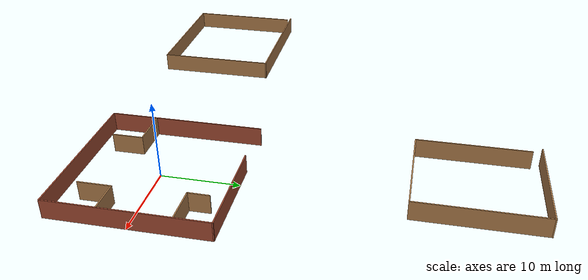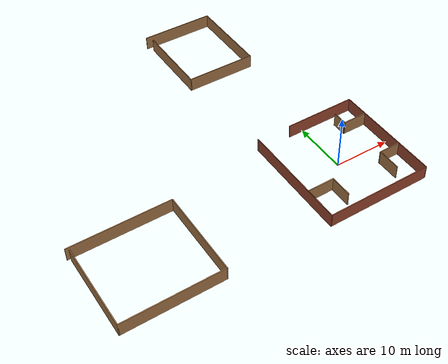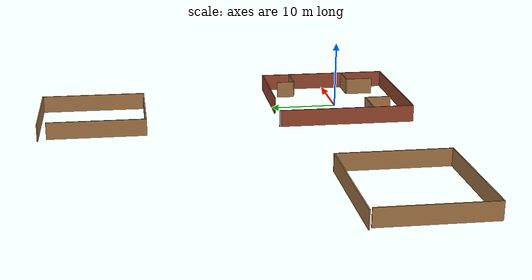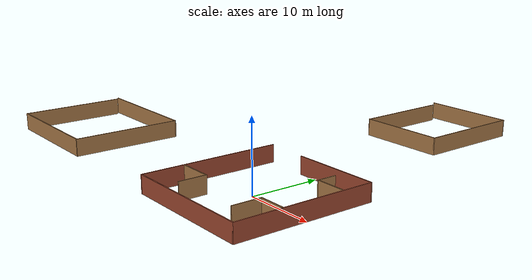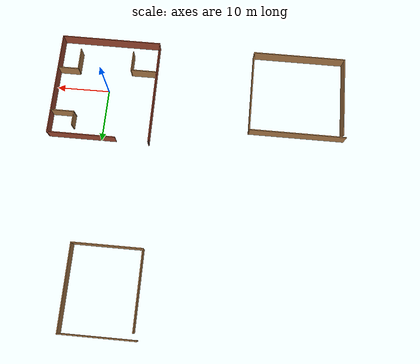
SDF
<?xml version='1.0'?>
<sdf version='1.7'>
  <model name='uniworld'>
    <pose>-866.621 -223.809 0 0 -0 0</pose>
    <link name='Wall_1'>
      <collision name='Wall_1_Collision'>
        <geometry>
          <box>
            <size>261.5 0.15 2.5</size>
          </box>
        </geometry>
        <pose>0 0 1.25 0 -0 0</pose>
      </collision>
      <visual name='Wall_1_Visual'>
        <pose>0 0 1.25 0 -0 0</pose>
        <geometry>
          <box>
            <size>261.5 0.15 2.5</size>
          </box>
        </geometry>
        <material>
          <script>
            <uri>file://media/materials/scripts/gazebo.material</uri>
            <name>Gazebo/Grey</name>
          </script>
          <ambient>1 1 1 1</ambient>
        </material>
        <meta>
          <layer>0</layer>
        </meta>
      </visual>
      <pose>-784.084 -176.555 0 0 -0 0.785398</pose>
    </link>
    <link name='Wall_14'>
      <collision name='Wall_14_Collision'>
        <geometry>
          <box>
            <size>4 0.15 2.5</size>
          </box>
        </geometry>
        <pose>0 0 1.25 0 -0 0</pose>
      </collision>
      <visual name='Wall_14_Visual'>
        <pose>0 0 1.25 0 -0 0</pose>
        <geometry>
          <box>
            <size>4 0.15 2.5</size>
          </box>
        </geometry>
        <material>
          <script>
            <uri>file://media/materials/scripts/gazebo.material</uri>
            <name>Gazebo/Wood</name>
          </script>
          <ambient>1 1 1 1</ambient>
        </material>
        <meta>
          <layer>0</layer>
        </meta>
      </visual>
      <pose>874.571 220.573 0 0 -0 3.14159</pose>
    </link>
    <link name='Wall_15'>
      <collision name='Wall_15_Collision'>
        <geometry>
          <box>
            <size>4.25 0.15 2.5</size>
          </box>
        </geometry>
        <pose>0 0 1.25 0 -0 0</pose>
      </collision>
      <visual name='Wall_15_Visual'>
        <pose>0 0 1.25 0 -0 0</pose>
        <geometry>
          <box>
            <size>4.25 0.15 2.5</size>
          </box>
        </geometry>
        <material>
          <script>
            <uri>file://media/materials/scripts/gazebo.material</uri>
            <name>Gazebo/Wood</name>
          </script>
          <ambient>1 1 1 1</ambient>
        </material>
        <meta>
          <layer>0</layer>
        </meta>
      </visual>
      <pose>872.646 218.523 0 0 -0 -1.5708</pose>
    </link>
    <link name='Wall_153'>
      <collision name='Wall_153_Collision'>
        <geometry>
          <box>
            <size>15.5 0.15 2.5</size>
          </box>
        </geometry>
        <pose>0 0 1.25 0 -0 0</pose>
      </collision>
      <visual name='Wall_153_Visual'>
        <pose>0 0 1.25 0 -0 0</pose>
        <geometry>
          <box>
            <size>15.5 0.15 2.5</size>
          </box>
        </geometry>
        <material>
          <script>
            <uri>file://media/materials/scripts/gazebo.material</uri>
            <name>Gazebo/Wood</name>
          </script>
          <ambient>1 1 1 1</ambient>
        </material>
        <meta>
          <layer>0</layer>
        </meta>
      </visual>
      <pose>821.876 221.838 0 0 -0 -1.5708</pose>
    </link>
    <link name='Wall_154'>
      <collision name='Wall_154_Collision'>
        <geometry>
          <box>
            <size>17.5 0.15 2.5</size>
          </box>
        </geometry>
        <pose>0 0 1.25 0 -0 0</pose>
      </collision>
      <visual name='Wall_154_Visual'>
        <pose>0 0 1.25 0 -0 0</pose>
        <geometry>
          <box>
            <size>17.5 0.15 2.5</size>
          </box>
        </geometry>
        <material>
          <script>
            <uri>file://media/materials/scripts/gazebo.material</uri>
            <name>Gazebo/Wood</name>
          </script>
          <ambient>1 1 1 1</ambient>
        </material>
        <meta>
          <layer>0</layer>
        </meta>
      </visual>
      <pose>830.551 214.163 0 0 -0 0</pose>
    </link>
    <link name='Wall_155'>
      <collision name='Wall_155_Collision'>
        <geometry>
          <box>
            <size>16 0.15 2.5</size>
          </box>
        </geometry>
        <pose>0 0 1.25 0 -0 0</pose>
      </collision>
      <visual name='Wall_155_Visual'>
        <pose>0 0 1.25 0 -0 0</pose>
        <geometry>
          <box>
            <size>16 0.15 2.5</size>
          </box>
        </geometry>
        <material>
          <script>
            <uri>file://media/materials/scripts/gazebo.material</uri>
            <name>Gazebo/Wood</name>
          </script>
          <ambient>1 1 1 1</ambient>
        </material>
        <meta>
          <layer>0</layer>
        </meta>
      </visual>
      <pose>839.226 222.088 0 0 -0 1.5708</pose>
    </link>
    <link name='Wall_156'>
      <collision name='Wall_156_Collision'>
        <geometry>
          <box>
            <size>18 0.15 2.5</size>
          </box>
        </geometry>
        <pose>0 0 1.25 0 -0 0</pose>
      </collision>
      <visual name='Wall_156_Visual'>
        <pose>0 0 1.25 0 -0 0</pose>
        <geometry>
          <box>
            <size>18 0.15 2.5</size>
          </box>
        </geometry>
        <material>
          <script>
            <uri>file://media/materials/scripts/gazebo.material</uri>
            <name>Gazebo/Wood</name>
          </script>
          <ambient>1 1 1 1</ambient>
        </material>
        <meta>
          <layer>0</layer>
        </meta>
      </visual>
      <pose>830.301 230.013 0 0 -0 3.14159</pose>
    </link>
    <link name='Wall_17'>
      <collision name='Wall_17_Collision'>
        <geometry>
          <box>
            <size>4.5 0.15 2.5</size>
          </box>
        </geometry>
        <pose>0 0 1.25 0 -0 0</pose>
      </collision>
      <visual name='Wall_17_Visual'>
        <pose>0 0 1.25 0 -0 0</pose>
        <geometry>
          <box>
            <size>4.5 0.15 2.5</size>
          </box>
        </geometry>
        <material>
          <script>
            <uri>file://media/materials/scripts/gazebo.material</uri>
            <name>Gazebo/Wood</name>
          </script>
          <ambient>1 1 1 1</ambient>
        </material>
        <meta>
          <layer>0</layer>
        </meta>
      </visual>
      <pose>874.321 229.381 0 0 -0 3.14159</pose>
    </link>
    <link name='Wall_18'>
      <collision name='Wall_18_Collision'>
        <geometry>
          <box>
            <size>2.75 0.15 2.5</size>
          </box>
        </geometry>
        <pose>0 0 1.25 0 -0 0</pose>
      </collision>
      <visual name='Wall_18_Visual'>
        <pose>0 0 1.25 0 -0 0</pose>
        <geometry>
          <box>
            <size>2.75 0.15 2.5</size>
          </box>
        </geometry>
        <material>
          <script>
            <uri>file://media/materials/scripts/gazebo.material</uri>
            <name>Gazebo/Wood</name>
          </script>
          <ambient>1 1 1 1</ambient>
        </material>
        <meta>
          <layer>0</layer>
        </meta>
      </visual>
      <pose>872.146 230.681 0 0 -0 1.5708</pose>
    </link>
    <link name='Wall_20'>
      <collision name='Wall_20_Collision'>
        <geometry>
          <box>
            <size>5 0.15 2.5</size>
          </box>
        </geometry>
        <pose>0 0 1.25 0 -0 0</pose>
      </collision>
      <visual name='Wall_20_Visual'>
        <pose>0 0 1.25 0 -0 0</pose>
        <geometry>
          <box>
            <size>5 0.15 2.5</size>
          </box>
        </geometry>
        <material>
          <script>
            <uri>file://media/materials/scripts/gazebo.material</uri>
            <name>Gazebo/Wood</name>
          </script>
          <ambient>1 1 1 1</ambient>
        </material>
        <meta>
          <layer>0</layer>
        </meta>
      </visual>
      <pose>860.109 219.957 0 0 -0 0</pose>
    </link>
    <link name='Wall_21'>
      <collision name='Wall_21_Collision'>
        <geometry>
          <box>
            <size>4 0.15 2.5</size>
          </box>
        </geometry>
        <pose>0 0 1.25 0 -0 0</pose>
      </collision>
      <visual name='Wall_21_Visual'>
        <pose>0 0 1.25 0 -0 0</pose>
        <geometry>
          <box>
            <size>4 0.15 2.5</size>
          </box>
        </geometry>
        <material>
          <script>
            <uri>file://media/materials/scripts/gazebo.material</uri>
            <name>Gazebo/Wood</name>
          </script>
          <ambient>1 1 1 1</ambient>
        </material>
        <meta>
          <layer>0</layer>
        </meta>
      </visual>
      <pose>862.534 218.032 0 0 -0 -1.5708</pose>
    </link>
    <link name='Wall_23'>
      <collision name='Wall_23_Collision'>
        <geometry>
          <box>
            <size>14.25 0.15 2.5</size>
          </box>
        </geometry>
        <pose>0 0 1.25 0 -0 0</pose>
      </collision>
      <visual name='Wall_23_Visual'>
        <pose>0 0 1.25 0 -0 0</pose>
        <geometry>
          <box>
            <size>14.25 0.15 2.5</size>
          </box>
        </geometry>
        <material>
          <script>
            <uri>file://media/materials/scripts/gazebo.material</uri>
            <name>Gazebo/Wood</name>
          </script>
          <ambient>1 1 1 1</ambient>
        </material>
        <meta>
          <layer>0</layer>
        </meta>
      </visual>
      <pose>856.271 260.688 0 0 -0 -1.5708</pose>
    </link>
    <link name='Wall_24'>
      <collision name='Wall_24_Collision'>
        <geometry>
          <box>
            <size>12.75 0.15 2.5</size>
          </box>
        </geometry>
        <pose>0 0 1.25 0 -0 0</pose>
      </collision>
      <visual name='Wall_24_Visual'>
        <pose>0 0 1.25 0 -0 0</pose>
        <geometry>
          <box>
            <size>12.75 0.15 2.5</size>
          </box>
        </geometry>
        <material>
          <script>
            <uri>file://media/materials/scripts/gazebo.material</uri>
            <name>Gazebo/Wood</name>
          </script>
          <ambient>1 1 1 1</ambient>
        </material>
        <meta>
          <layer>0</layer>
        </meta>
      </visual>
      <pose>862.571 253.638 0 0 -0 0</pose>
    </link>
    <link name='Wall_25'>
      <collision name='Wall_25_Collision'>
        <geometry>
          <box>
            <size>15.5 0.15 2.5</size>
          </box>
        </geometry>
        <pose>0 0 1.25 0 -0 0</pose>
      </collision>
      <visual name='Wall_25_Visual'>
        <pose>0 0 1.25 0 -0 0</pose>
        <geometry>
          <box>
            <size>15.5 0.15 2.5</size>
          </box>
        </geometry>
        <material>
          <script>
            <uri>file://media/materials/scripts/gazebo.material</uri>
            <name>Gazebo/Wood</name>
          </script>
          <ambient>1 1 1 1</ambient>
        </material>
        <meta>
          <layer>0</layer>
        </meta>
      </visual>
      <pose>868.871 261.313 0 0 -0 1.5708</pose>
    </link>
    <link name='Wall_26'>
      <collision name='Wall_26_Collision'>
        <geometry>
          <box>
            <size>13.5 0.15 2.5</size>
          </box>
        </geometry>
        <pose>0 0 1.25 0 -0 0</pose>
      </collision>
      <visual name='Wall_26_Visual'>
        <pose>0 0 1.25 0 -0 0</pose>
        <geometry>
          <box>
            <size>13.5 0.15 2.5</size>
          </box>
        </geometry>
        <material>
          <script>
            <uri>file://media/materials/scripts/gazebo.material</uri>
            <name>Gazebo/Wood</name>
          </script>
          <ambient>1 1 1 1</ambient>
        </material>
        <meta>
          <layer>0</layer>
        </meta>
      </visual>
      <pose>862.196 268.988 0 0 -0 3.14159</pose>
    </link>
    <link name='Wall_4'>
      <collision name='Wall_4_Collision'>
        <geometry>
          <box>
            <size>0.3 0.15 2.5</size>
          </box>
        </geometry>
        <pose>0 0 1.25 0 -0 0</pose>
      </collision>
      <visual name='Wall_4_Visual'>
        <pose>0 0 1.25 0 -0 0</pose>
        <geometry>
          <box>
            <size>0.3 0.15 2.5</size>
          </box>
        </geometry>
        <material>
          <script>
            <uri>file://media/materials/scripts/gazebo.material</uri>
            <name>Gazebo/Grey</name>
          </script>
          <ambient>1 1 1 1</ambient>
        </material>
        <meta>
          <layer>0</layer>
        </meta>
      </visual>
      <pose>857.666 233.934 0 0 -0 1.5708</pose>
    </link>
    <link name='Wall_5'>
      <collision name='Wall_5_Collision'>
        <geometry>
          <box>
            <size>20.25 0.15 2.5</size>
          </box>
        </geometry>
        <pose>0 0 1.25 0 -0 0</pose>
      </collision>
      <visual name='Wall_5_Visual'>
        <pose>0 0 1.25 0 -0 0</pose>
        <geometry>
          <box>
            <size>20.25 0.15 2.5</size>
          </box>
        </geometry>
        <material>
          <script>
            <uri>file://media/materials/scripts/gazebo.material</uri>
            <name>Gazebo/Bricks</name>
          </script>
          <ambient>1 1 1 1</ambient>
        </material>
        <meta>
          <layer>0</layer>
        </meta>
      </visual>
      <pose>857.666 223.959 0 0 -0 -1.5708</pose>
    </link>
    <link name='Wall_6'>
      <collision name='Wall_6_Collision'>
        <geometry>
          <box>
            <size>19 0.15 2.5</size>
          </box>
        </geometry>
        <pose>0 0 1.25 0 -0 0</pose>
      </collision>
      <visual name='Wall_6_Visual'>
        <pose>0 0 1.25 0 -0 0</pose>
        <geometry>
          <box>
            <size>19 0.15 2.5</size>
          </box>
        </geometry>
        <material>
          <script>
            <uri>file://media/materials/scripts/gazebo.material</uri>
            <name>Gazebo/Bricks</name>
          </script>
          <ambient>1 1 1 1</ambient>
        </material>
        <meta>
          <layer>0</layer>
        </meta>
      </visual>
      <pose>867.091 213.909 0 0 -0 0</pose>
    </link>
    <link name='Wall_7'>
      <collision name='Wall_7_Collision'>
        <geometry>
          <box>
            <size>20 0.15 2.5</size>
          </box>
        </geometry>
        <pose>0 0 1.25 0 -0 0</pose>
      </collision>
      <visual name='Wall_7_Visual'>
        <pose>0 0 1.25 0 -0 0</pose>
        <geometry>
          <box>
            <size>20 0.15 2.5</size>
          </box>
        </geometry>
        <material>
          <script>
            <uri>file://media/materials/scripts/gazebo.material</uri>
            <name>Gazebo/Bricks</name>
          </script>
          <ambient>1 1 1 1</ambient>
        </material>
        <meta>
          <layer>0</layer>
        </meta>
      </visual>
      <pose>876.516 223.834 0 0 -0 1.5708</pose>
    </link>
    <link name='Wall_8'>
      <collision name='Wall_8_Collision'>
        <geometry>
          <box>
            <size>12.75 0.15 2.5</size>
          </box>
        </geometry>
        <pose>0 0 1.25 0 -0 0</pose>
      </collision>
      <visual name='Wall_8_Visual'>
        <pose>0 0 1.25 0 -0 0</pose>
        <geometry>
          <box>
            <size>12.75 0.15 2.5</size>
          </box>
        </geometry>
        <material>
          <script>
            <uri>file://media/materials/scripts/gazebo.material</uri>
            <name>Gazebo/Bricks</name>
          </script>
          <ambient>1 1 1 1</ambient>
        </material>
        <meta>
          <layer>0</layer>
        </meta>
      </visual>
      <pose>870.216 233.759 0 0 -0 3.14159</pose>
    </link>
    <static>1</static>
  </model>
</sdf>
